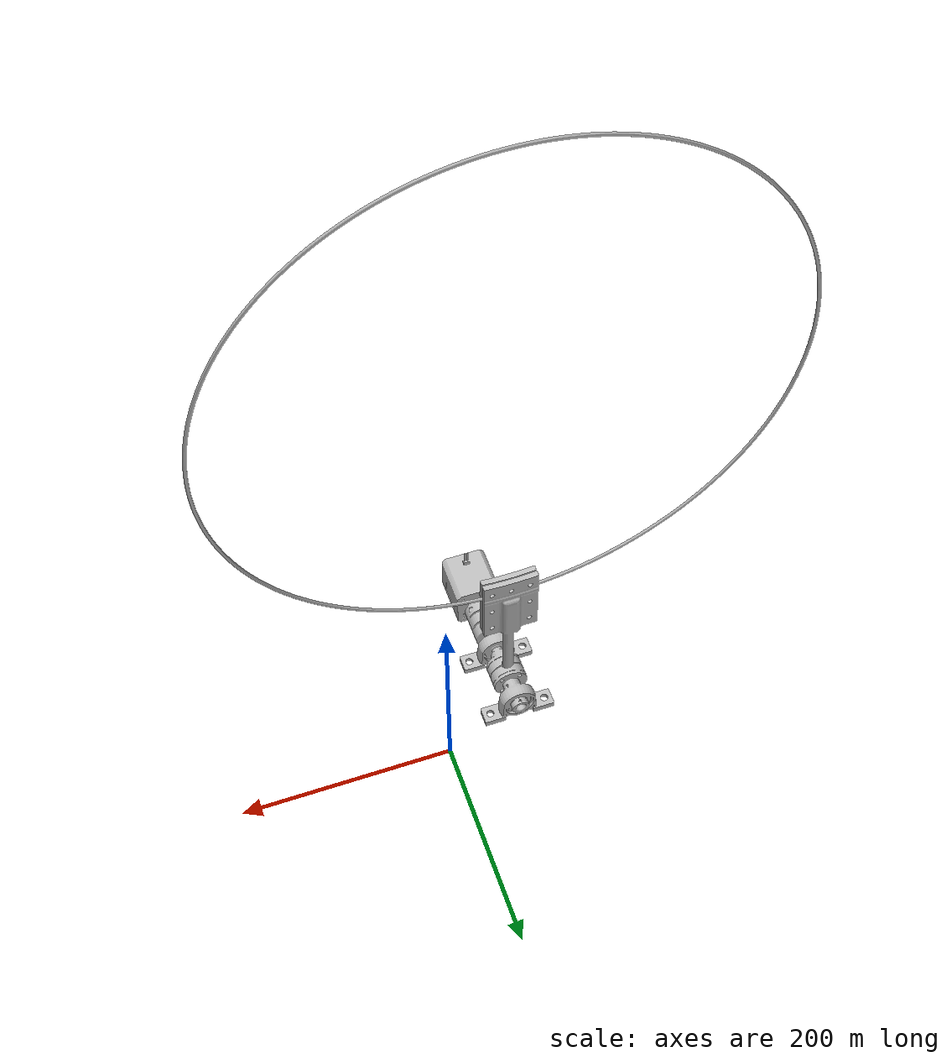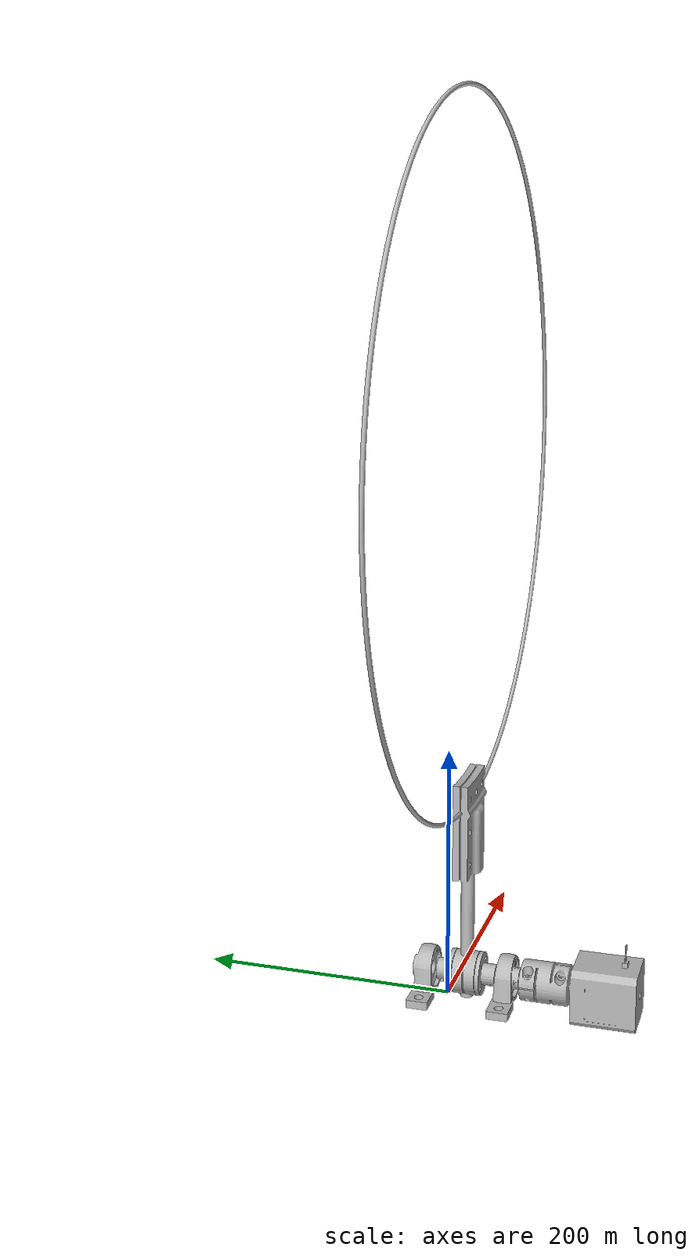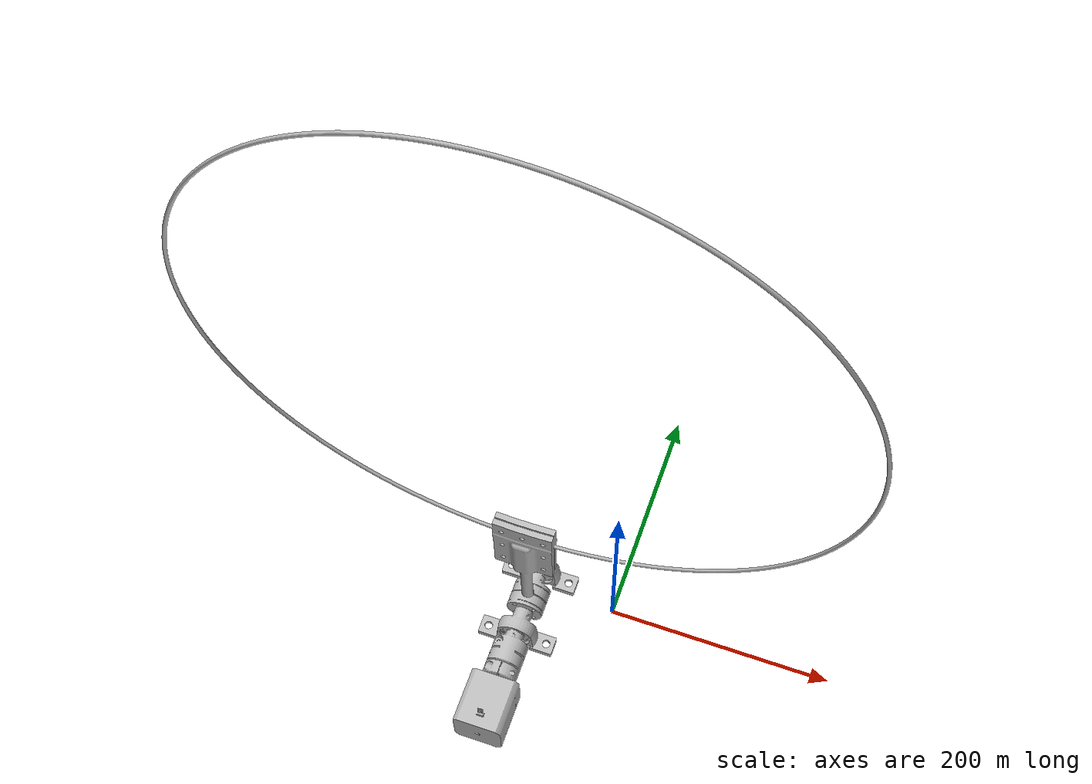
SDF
<?xml version="1.0"?>

<sdf version="1.9">
    <world name="world3">

        <include>
            <uri>model://arm</uri>
            <name>arm</name>
            <pose>0 0 0 0 0 0</pose>
        </include>

        <include>
            <uri>model://motor</uri>
            <name>motor</name>
            <pose>1 0 0 0 0 0</pose>
        </include>

    </world>
</sdf>

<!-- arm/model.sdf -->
<sdf version="1.9">

  <model name="arm">

    <static>true</static>

    <link name="link">

      <visual name="visual">

        <geometry>

          <mesh>

            <uri>meshes/Traumfaenger_EXPORT_arm.obj</uri>

          </mesh>

        </geometry>

      </visual>

    </link>

  </model>

</sdf>

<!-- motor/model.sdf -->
<sdf version="1.9">

    <model name="motor">

        <static>true</static>

        <link name="motor_link">

            <visual name="motor_visual">

                <geometry>
                    <mesh>
                        <uri>meshes/Traumfaenger_EXPORT_motor.obj</uri>
                        <scale>1 1 1</scale>
                    </mesh>
                </geometry>

            </visual>

        </link>

    </model>

</sdf>
